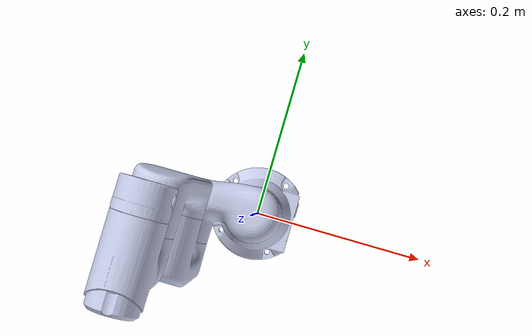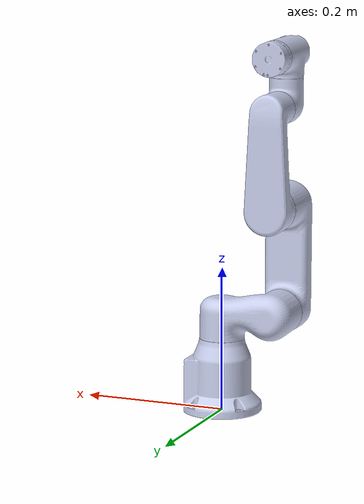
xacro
<?xml version="1.0"?>
<robot xmlns:xacro="http://www.ros.org/wiki/xacro" name="rm_eco62_description">

    <xacro:arg name="ros2_control_hardware_plugin" default="gz_ros2_control/GazeboSimSystem"/>
    <xacro:arg name="ros2_control_plugin_filename" default="gz_ros2_control-system"/>
    <xacro:arg name="ros2_control_plugin_name" default="gz_ros2_control::GazeboSimROS2ControlPlugin"/>

    <!-- Used for fixing robot to Gazebo 'base_link' 将机械手的基座固定在世界坐标上-->
    <link name="world"/>
    <joint name="fixed" type="fixed">
        <parent link="world"/>
        <child link="base_link"/>
    </joint>

    <!-- Import claw_description urdf file -->
    <xacro:include filename="$(find rm_description)/urdf/rm_eco62_gazebo.urdf" />

    <!-- 对一些link进行gazebo的属性设置 -->
    <gazebo reference="base_link">
        <self_collide>false</self_collide>
        <gravity>false</gravity>
    </gazebo>
    <gazebo reference="Link1">
        <material>Gazebo/Purple</material>
        <self_collide>false</self_collide>
        <gravity>false</gravity>
    </gazebo>
    <gazebo reference="Link2">
        <material>Gazebo/Red</material>
        <gravity>false</gravity>
    </gazebo>
    <gazebo reference="Link3">
        <material>Gazebo/Blue</material>
        <gravity>false</gravity>
    </gazebo>
    <gazebo reference="Link4">
        <material>Gazebo/Green</material>
        <gravity>false</gravity>
    </gazebo>
    <gazebo reference="Link5">
        <material>Gazebo/Yellow</material>
        <gravity>false</gravity>
    </gazebo>
    <gazebo reference="Link6">
        <material>Gazebo/Orange</material>
        <gravity>false</gravity>
    </gazebo>

    <gazebo>
                <self_collide>true</self_collide>
    </gazebo>

    <!-- 声明ros2_control -->
    <ros2_control name="GazeboSystem" type="system">
        <hardware>
            <plugin>$(arg ros2_control_hardware_plugin)</plugin>
        </hardware>
        <joint name="joint1">
            <command_interface name="position"/>
            <state_interface name="position">
                <param name="initial_value">0</param>
            </state_interface>
            <state_interface name="velocity"/>
        </joint>
        <joint name="joint2">
            <command_interface name="position"/>
            <state_interface name="position">
                <param name="initial_value">0</param>
            </state_interface>
            <state_interface name="velocity"/>
        </joint>
        <joint name="joint3">
            <command_interface name="position"/>
            <state_interface name="position">
                <param name="initial_value">0</param>
            </state_interface>
            <state_interface name="velocity"/>
        </joint>
        <joint name="joint4">
            <command_interface name="position"/>
            <state_interface name="position">
                <param name="initial_value">0</param>
            </state_interface>
            <state_interface name="velocity"/>
        </joint>
        <joint name="joint5">
            <command_interface name="position"/>
            <state_interface name="position">
                <param name="initial_value">0</param>
            </state_interface>
            <state_interface name="velocity"/>
        </joint>
        <joint name="joint6">
            <command_interface name="position"/>
            <state_interface name="position">
                <param name="initial_value">0</param>
            </state_interface>
            <state_interface name="velocity"/>
        </joint>
    </ros2_control>

    <!-- 加载ros2_control插件 -->
    <gazebo>
        <plugin filename="$(arg ros2_control_plugin_filename)" name="$(arg ros2_control_plugin_name)">
            <parameters>$(find rm_eco62_config)/config/ros2_controllers.yaml</parameters>
            <robot_param>robot_description</robot_param>
            <robot_param_node>robot_state_publisher</robot_param_node>
        </plugin>
    </gazebo>

</robot>

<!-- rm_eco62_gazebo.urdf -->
<robot name="rm_eco62_description">
  <link name="base_link">
    <inertial>
      <origin xyz="0.00169 -0.00051 0.03642" rpy="0 0 0" />
      <mass value="0.53269" />
      <inertia ixx="0.00082414717" ixy="6.88706e-06" ixz="-6.121187e-05" iyy="0.00081763768" iyz="7.50108e-06" izz="0.00071495512" />
    </inertial>
    <visual>
      <origin xyz="0 0 0" rpy="0 0 0" />
      <geometry>
        <mesh filename="file://$(find rm_description)/meshes/rm_eco62_arm/base_link.STL" />
      </geometry>
      <material name="">
        <color rgba="0.792156862745098 0.819607843137255 0.933333333333333 1" />
      </material>
    </visual>
    <collision>
      <origin xyz="0 0 0" rpy="0 0 0" />
      <geometry>
        <mesh filename="file://$(find rm_description)/meshes/rm_eco62_arm/base_link.STL" />
      </geometry>
    </collision>
  </link>

  <link name="Link1">
    <inertial>
      <origin xyz="-0.036 -0.01347 -0.00908" rpy="0 0 0" />
      <mass value="1.19575" />
      <inertia ixx="0.0010263165" ixy="-0.0005617707" ixz="0.0003950338" iyy="0.002074852" iyz="0.0001455465" izz="0.0022139276" />
    </inertial>
    <visual>
      <origin xyz="0 0 0" rpy="0 0 0" />
      <geometry>
        <mesh filename="file://$(find rm_description)/meshes/rm_eco62_arm/Link1.STL" />
      </geometry>
      <material name="">
        <color rgba="0.792156862745098 0.819607843137255 0.933333333333333 1" />
      </material>
    </visual>
    <collision>
      <origin xyz="0 0 0" rpy="0 0 0" />
      <geometry>
        <mesh filename="file://$(find rm_description)/meshes/rm_eco62_arm/Link1.STL" />
      </geometry>
    </collision>
  </link>

  <joint name="joint1" type="revolute">
    <origin xyz="0 0 0.136000000000009" rpy="0 0 0" />
    <parent link="base_link" />
    <child link="Link1" />
    <axis xyz="0 0 1" />
    <limit lower="-3.1067" upper="3.1067" effort="10" velocity="3.927" />
  </joint>

  <link name="Link2">
    <inertial>
      <origin xyz="0.1198 0 -0.0396" rpy="0 0 0" />
      <mass value="0.8055" />
      <inertia ixx="0.0006798328" ixy="-1.554e-07" ixz="-0.0005856569" iyy="0.0027787685" iyz="-2.158e-07" izz="0.002559954" />
    </inertial>
    <visual>
      <origin xyz="0 0 0" rpy="0 0 0" />
      <geometry>
        <mesh filename="file://$(find rm_description)/meshes/rm_eco62_arm/Link2.STL" />
      </geometry>
      <material name="">
        <color rgba="0.792156862745098 0.819607843137255 0.933333333333333 1" />
      </material>
    </visual>
    <collision>
      <origin xyz="0 0 0" rpy="0 0 0" />
      <geometry>
        <mesh filename="file://$(find rm_description)/meshes/rm_eco62_arm/Link2.STL" />
      </geometry>
    </collision>
  </link>

  <joint name="joint2" type="revolute">
    <origin xyz="-0.0700000000000007 0 0" rpy="-1.5707963267949 -1.5707963267949 0" />
    <parent link="Link1" />
    <child link="Link2" />
    <axis xyz="0 0 1" />
    <limit lower="-2.9496" upper="1.8151" effort="10" velocity="3.927" />
  </joint>

  <link name="Link3">
    <inertial>
      <origin xyz="0.0944 0 -0.002" rpy="0 0 0" />
      <mass value="0.413" />
      <inertia ixx="0.0001838513" ixy="-3.096e-07" ixz="-0.0001694665" iyy="0.0013409517" iyz="-1.552e-07" izz="0.0013534138" />
    </inertial>
    <visual>
      <origin xyz="0 0 0" rpy="0 0 0" />
      <geometry>
        <mesh filename="file://$(find rm_description)/meshes/rm_eco62_arm/Link3.STL" />
      </geometry>
      <material name="">
        <color rgba="0.792156862745098 0.819607843137255 0.933333333333333 1" />
      </material>
    </visual>
    <collision>
      <origin xyz="0 0 0" rpy="0 0 0" />
      <geometry>
        <mesh filename="file://$(find rm_description)/meshes/rm_eco62_arm/Link3.STL" />
      </geometry>
    </collision>
  </link>

  <joint name="joint3" type="revolute">
    <origin xyz="0.148000000000001 0 0" rpy="0 0 0" />
    <parent link="Link2" />
    <child link="Link3" />
    <axis xyz="0 0 1" />
    <limit lower="-2.6354" upper="2.3213" effort="10" velocity="3.927" />
  </joint>

  <link name="Link4">
    <inertial>
      <origin xyz="-0.0001 -0.0168 0.0034" rpy="0 0 0" />
      <mass value="0.2386" />
      <inertia ixx="9.6544e-05" ixy="-2.05e-07" ixz="-4.178e-07" iyy="7.08919e-05" iyz="-1.44935e-05" izz="9.15269e-05" />
    </inertial>
    <visual>
      <origin xyz="0 0 0" rpy="0 0 0" />
      <geometry>
        <mesh filename="file://$(find rm_description)/meshes/rm_eco62_arm/Link4.STL" />
      </geometry>
      <material name="">
        <color rgba="0.792156862745098 0.819607843137255 0.933333333333333 1" />
      </material>
    </visual>
    <collision>
      <origin xyz="0 0 0" rpy="0 0 0" />
      <geometry>
        <mesh filename="file://$(find rm_description)/meshes/rm_eco62_arm/Link4.STL" />
      </geometry>
    </collision>
  </link>

  <joint name="joint4" type="revolute">
    <origin xyz="0.136 0 -0.0585" rpy="0 0 1.5708" />
    <parent link="Link3" />
    <child link="Link4" />
    <axis xyz="0 0 1" />
    <limit lower="-3.002" upper="3.002" effort="3" velocity="3.14159" />
  </joint>

  <link name="Link5">
    <inertial>
      <origin xyz="-0.0001 0.0168 -0.0043" rpy="0 0 0" />
      <mass value="0.2633" />
      <inertia ixx="0.000146228" ixy="-1.975e-07" ixz="-4.456e-07" iyy="8.9047e-05" iyz="-1.93654e-05" izz="0.000137516" />
    </inertial>
    <visual>
      <origin xyz="0 0 0" rpy="0 0 0" />
      <geometry>
        <mesh filename="file://$(find rm_description)/meshes/rm_eco62_arm/Link5.STL" />
      </geometry>
      <material name="">
        <color rgba="0.792156862745098 0.819607843137255 0.933333333333333 1" />
      </material>
    </visual>
    <collision>
      <origin xyz="0 0 0" rpy="0 0 0" />
      <geometry>
        <mesh filename="file://$(find rm_description)/meshes/rm_eco62_arm/Link5.STL" />
      </geometry>
    </collision>
  </link>

  <joint name="joint5" type="revolute">
    <origin xyz="0 -0.071 0" rpy="1.5707963267949 0 0" />
    <parent link="Link4" />
    <child link="Link5" />
    <axis xyz="0 0 1" />
    <limit lower="-3.002" upper="3.002" effort="3" velocity="3.14159" />
  </joint>

  <link name="Link6">
    <inertial>
      <origin xyz="0 -0.0001 -0.0146" rpy="0 0 0" />
      <mass value="0.0667" />
      <inertia ixx="1.81365e-05" ixy="-5.02e-08" ixz="-1.7e-09" iyy="1.77947e-05" iyz="-4.49e-08" izz="2.43725e-05" />
    </inertial>
    <visual>
      <origin xyz="0 0 0" rpy="0 0 0" />
      <geometry>
        <mesh filename="file://$(find rm_description)/meshes/rm_eco62_arm/Link6.STL" />
      </geometry>
      <material name="">
        <color rgba="0.792156862745098 0.819607843137255 0.933333333333333 1" />
      </material>
    </visual>
    <collision>
      <origin xyz="0 0 0" rpy="0 0 0" />
      <geometry>
        <mesh filename="file://$(find rm_description)/meshes/rm_eco62_arm/Link6.STL" />
      </geometry>
    </collision>
  </link>

  <joint name="joint6" type="revolute">
    <origin xyz="0 0.0707 0" rpy="-1.5707963267949 0 0" />
    <parent link="Link5" />
    <child link="Link6" />
    <axis xyz="0 0 0.999999999999983" />
    <limit lower="-6.2832" upper="6.2832" effort="3" velocity="3.14159" />
  </joint>
</robot>
